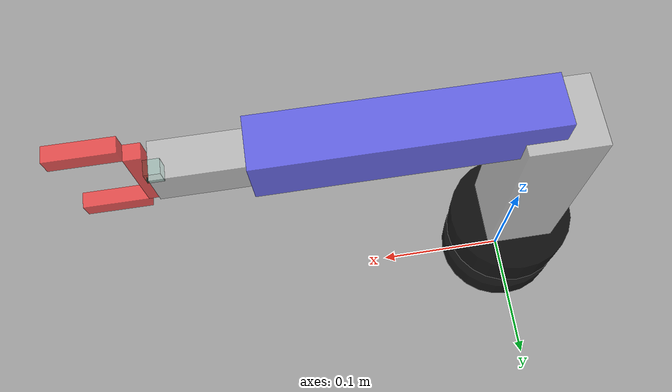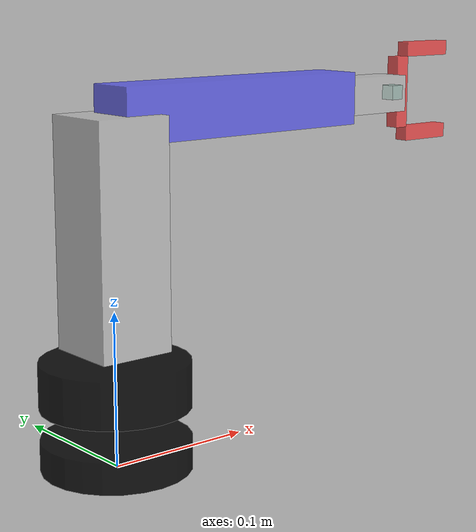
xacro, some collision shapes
<?xml version="1.0"?>
<robot name="al5d" xmlns:xacro="http://ros.org/wiki/xacro">
    <xacro:include filename="$(find al5d_description)/urdf/transmissions_lidar.urdf.xacro"/>

    <xacro:property name="M_PI" value="3.14159"/>

    <xacro:property name="base_height" value="0.02" />
    <xacro:property name="base_radius" value="0.048" />
    <xacro:property name="upper_base_height" value="0.07" />
    <xacro:property name="upper_arm_offset" value="0.006" />
    <xacro:property name="upper_arm_length" value="0.14605" />
    <xacro:property name="upper_arm_width" value="0.05" />
    <xacro:property name="lower_arm_length" value="0.187325" />
    <xacro:property name="lower_arm_width" value="0.035" />
    <xacro:property name="wrist_length" value="0.055" />
    <xacro:property name="wrist_width" value="0.025" />
    <xacro:property name="gripper_length" value="0.06" />
    <xacro:property name="gripper_width" value="0.05" />
    <xacro:property name="gripper_height" value="0.01" />
    <xacro:property name="finger_length" value="0.04" />

    <xacro:property name="inertia_block">
      <inertial>
        <mass value="0.3"/>
        <inertia ixx="0.001" ixy="0.0" ixz="0.0" iyy="0.001" iyz="0.0" izz="0.001"/>
      </inertial>
    </xacro:property>

    <link name="world">
    </link>
    <link name="base">
      <visual>
        <origin xyz="0 0 ${base_height/2}" rpy="0 0 0"/>
        <geometry>
          <cylinder length="${base_height}" radius="${base_radius}"/>
        </geometry>
        <material name="black">
          <color rgba="0 0 0 0.85"/>
        </material>
      </visual>
      <collision>
        <origin xyz="0 0 ${base_height/2}" rpy="0 0 0"/>
        <geometry>
          <cylinder length="${base_height}" radius="${base_radius}"/>
        </geometry>
      </collision>
      <xacro:insert_block name="inertia_block" />
    </link>
    <link name="upper_base">
      <visual>
	<origin xyz="0 0 ${(upper_base_height - base_height - 0.02)/2 + base_height + 0.02}" rpy="0 0 0"/>
        <geometry>
          <cylinder length="${upper_base_height - base_height - 0.02}" radius="${base_radius}"/>
        </geometry>
        <material name="black">
        </material>
      </visual>
      <collision>
	<origin xyz="0 0 ${(upper_base_height - base_height - 0.02)/2 + base_height + 0.02}" rpy="0 0 0"/>
        <geometry>
          <cylinder length="${upper_base_height - base_height - 0.02}" radius="${base_radius}"/>
        </geometry>
      </collision>
      <xacro:insert_block name="inertia_block" />
    </link>
    <link name="upper_arm">
      <visual>
        <origin xyz="${upper_arm_length/2} 0 0" rpy="0 0 0"/>
        <geometry>
          <box size="${upper_arm_length} ${upper_arm_width} ${upper_arm_width}"/>
        </geometry>
        <material name="silver">
          <color rgba="0.8 0.8 0.8 0.85"/>
        </material>
      </visual>
      <collision>
        <origin xyz="${upper_arm_length/2} 0 0" rpy="0 0 0"/>
        <geometry>
          <box size="${upper_arm_length} ${upper_arm_width} ${upper_arm_width}"/>
        </geometry>
      </collision>
      <xacro:insert_block name="inertia_block" />
    </link>
    <link name="lower_arm">
      <visual>
        <origin xyz="${lower_arm_length/2} 0 0" rpy="0 0 0"/>
        <geometry>
          <box size="${lower_arm_length} ${lower_arm_width} ${lower_arm_width}"/>
        </geometry>
        <material name="blue">
          <color rgba="0.4 0.4 1 0.85"/>
        </material>
      </visual>
      <collision>
        <origin xyz="${lower_arm_length/2} 0 0" rpy="0 0 0"/>
        <geometry>
          <box size="${lower_arm_length} ${lower_arm_width} ${lower_arm_width}"/>
        </geometry>
      </collision>
      <xacro:insert_block name="inertia_block" />
    </link>
    <link name="wrist">
      <visual>
        <origin xyz="${wrist_length/2} 0 0" rpy="0 0 0"/>
        <geometry>
          <box size="${wrist_length} ${wrist_width} ${wrist_width}"/>
        </geometry>
        <material name="silver">
        </material>
      </visual>
      <collision>
        <origin xyz="${wrist_length/2} 0 0" rpy="0 0 0"/>
        <geometry>
          <box size="${wrist_length} ${wrist_width} ${wrist_width}"/>
        </geometry>
      </collision>
      <xacro:insert_block name="inertia_block" />
    </link>
    <link name="gripper_base">
      <visual>
	<origin xyz="${gripper_height/2} 0 0" rpy="0 0 0"/>
        <geometry>
          <box size="${gripper_height} ${gripper_height} ${gripper_width}"/>
        </geometry>
        <material name="red">
          <color rgba="1 0.3 0.3 0.85"/>
        </material>
      </visual>
      <collision>
        <origin xyz="${gripper_width/2} 0 0" rpy="0 0 0"/>
        <geometry>
          <box size="${gripper_height} ${gripper_height} ${gripper_width}"/>
        </geometry>
      </collision>
      <xacro:insert_block name="inertia_block" />
    </link>
    <link name="gripper_rightfinger">
      <visual>
	<origin xyz="${finger_length/2} 0 0" rpy="0 0 0"/>
        <geometry>
          <box size="${finger_length} ${gripper_height} ${gripper_height}"/>
        </geometry>
        <material name="red">
          <color rgba="1 0.3 0.3 0.85"/>
        </material>
      </visual>
      <collision>
        <origin xyz="${gripper_width/2} 0 0" rpy="0 0 0"/>
        <geometry>
		<box size="${gripper_width} ${gripper_height} ${gripper_height}"/>
        </geometry>
      </collision>
      <xacro:insert_block name="inertia_block" />
    </link>
    <link name="gripper_leftfinger">
      <visual>
	<origin xyz="${finger_length/2} 0 0" rpy="0 0 0"/>
        <geometry>
          <box size="${finger_length} ${gripper_height} ${gripper_height}"/>
        </geometry>
        <material name="red">
          <color rgba="1 0.3 0.3 0.85"/>
        </material>
      </visual>
      <collision>
        <origin xyz="${gripper_width/2} 0 0" rpy="0 0 0"/>
        <geometry>
          <box size="${gripper_width} ${gripper_height} ${gripper_height}"/>
        </geometry>
      </collision>
      <xacro:insert_block name="inertia_block" />
    </link>
    <link name="end">
    </link>

    <!-- joints -->
    <joint name="base" type="fixed">
      <origin xyz="0 0 0" rpy="0 0 0"/>
      <parent link="world"/>
      <child link="base"/>
    </joint>
    <joint name="base_rotate" type="revolute">
      <origin xyz="0 0 0" rpy="0 0 0"/>
      <parent link="base"/>
      <child link="upper_base"/>
      <axis xyz="0 0 1"/>
      <limit lower="-1.4" upper="1.4" effort="10" velocity="3.67"/>
    </joint>
    <joint name="shoulder_tilt" type="revolute">
      <origin xyz="0 0 ${upper_arm_offset + upper_base_height}" rpy="${M_PI/2} -${M_PI/2} 0 "/>
      <parent link="upper_base"/>
      <child link="upper_arm"/>
      <axis xyz="0 0 -1"/>
      <limit lower="-1.2" upper="1.4" effort="10" velocity="3.32"/>
    </joint>
    <joint name="elbow_tilt" type="revolute">
      <origin xyz="${upper_arm_length} 0 0" rpy="0 0 -${M_PI/2}" />
      <parent link="upper_arm"/>
      <child link="lower_arm"/>
      <axis xyz="0 0 -1"/>
      <limit lower="-1.8" upper="1.7" effort="10" velocity="3.67"/>
    </joint>
    <joint name="wrist_tilt" type="revolute">
      <origin xyz="${lower_arm_length} 0 0" rpy="0 0 0"/>
      <parent link="lower_arm"/>
      <child link="wrist"/>
      <axis xyz="0 0 -1"/>
      <limit lower="-1.9" upper="1.7" effort="10" velocity="6.98"/>
    </joint>
    <joint name="wrist_rotate" type="revolute">
      <origin xyz="${wrist_length} 0 0" rpy="${M_PI/2} 0 0"/>
      <parent link="wrist"/>
      <child link="gripper_base"/>
      <axis xyz="1 0 0"/>
      <limit lower="-2" upper="1.5" effort="10" velocity="6.98"/>
    </joint>
    <joint name="open_gripperright" type="prismatic">
      <origin xyz="${gripper_height} 0 0.03" rpy="0 0 0"/>
      <parent link="gripper_base"/>
      <child link="gripper_rightfinger"/>
      <axis xyz="0 0 1"/>
      <limit lower="-0.03" upper="0.0" effort="100" velocity="6.98"/>
    </joint>
    <joint name="open_gripperleft" type="prismatic">
      <origin xyz="${gripper_height} 0 -0.03" rpy="0 0 0"/>
      <parent link="gripper_base"/>
      <child link="gripper_leftfinger"/>
      <axis xyz="0 0 1"/>
      <limit lower="0" upper="0.03" effort="100" velocity="6.98"/>
    </joint>
    <joint name="end" type="fixed">
      <origin xyz="${wrist_length} 0 0" rpy="0 ${M_PI/2} 0"/>
      <parent link="gripper_base"/>
      <child link="end"/>
    </joint>

 <link name="hokuyo">
    <inertial>
      <mass value="1e-5"/>
      <origin xyz="0 0 0" rpy="0 0 0"/>
      <inertia
        ixx="1e-8" ixy="0.0" ixz="0.0"
        iyy="1e-8" iyz="0.0"
        izz="1e-8"
      />
    </inertial>

    <collision>
      <origin xyz="0 0 0" rpy="0 0 0"/>
      <geometry>
        <box size="0.01 0.01 0.01"/>
      </geometry>
    </collision>

    <visual>
      <origin xyz="0 0 0" rpy="0 0 0"/>
      <geometry>
        <mesh filename="package://al5d_description/meshes/hokuyo.dae"/>
      </geometry>
    </visual>

  </link>

  <joint name="hokuyo_joint" type="fixed">
    <origin xyz="0 0 0" rpy="0 0 0" />
    <parent link="gripper_base"/>
    <child link="hokuyo" />
    <axis xyz="0 1 0"/>
  </joint>

  <gazebo>
    <plugin name="gazebo_ros_control" filename="libgazebo_ros_control.so">
      <robotSimType>gazebo_ros_control/DefaultRobotHWSim</robotSimType>
    </plugin>
  </gazebo>

  <gazebo reference="base_rotate">
    <material value="Gazebo/Grey" />
  </gazebo>

  <gazebo reference="shoulder_tilt">
    <material value="Gazebo/Grey" />
    <turnGravityOff>true</turnGravityOff>
  </gazebo>

  <gazebo reference="elbow_tilt">
    <material value="Gazebo/Grey" />
    <turnGravityOff>true</turnGravityOff>
  </gazebo>

  <gazebo reference="wrist_tilt">
    <material value="Gazebo/Grey" />
    <turnGravityOff>true</turnGravityOff>
  </gazebo>

  <gazebo reference="wrist_rotate">
    <material value="Gazebo/Grey" />
    <turnGravityOff>true</turnGravityOff>
  </gazebo>

  <gazebo reference="open_gripperright">
    <material value="Gazebo/Grey" />
    <turnGravityOff>true</turnGravityOff>
  </gazebo>

  <gazebo reference="open_gripperleft">
    <material value="Gazebo/Grey" />
    <turnGravityOff>true</turnGravityOff>
  </gazebo>

</robot>
